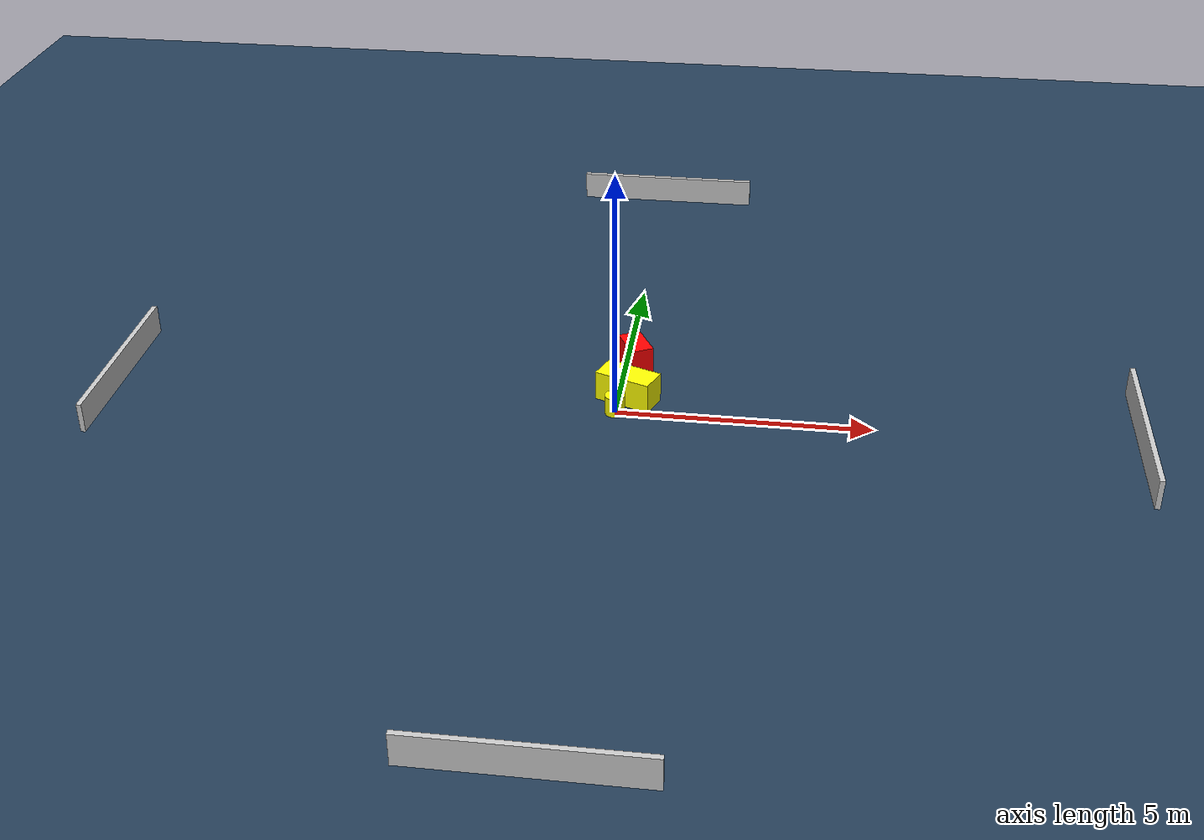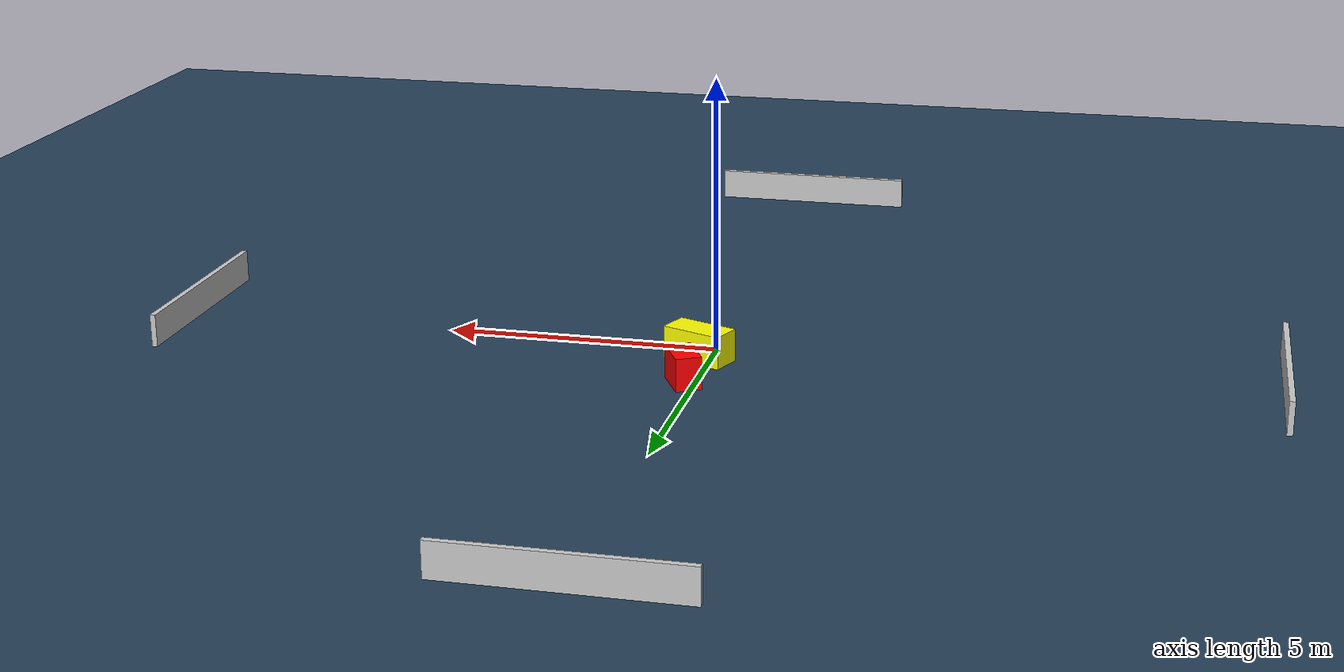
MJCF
<?xml version="1.0" ?>
<mujoco model="generated_environment">
  <option timestep="0.01" integrator="RK4" cone="elliptic"/>
  <default>
    <geom density="1"/>
  </default>
  <asset>
    <texture builtin="gradient" height="3072" name="skybox" rgb1="0.3 0.5 0.7" rgb2="0 0 0" type="skybox" width="512"/>
    <texture builtin="checker" height="300" name="groundplane" rgb1="0.2 0.3 0.4" rgb2="0.1 0.2 0.3" type="2d" width="300"/>
    <material name="groundplane" reflectance="0.2" texrepeat="5 5" texture="groundplane"/>
  </asset>
  <worldbody>
    <light dir="0 0 -1" directional="true" pos="0 0 1.5"/>
    <geom condim="3" friction="0.5 0.005 0.001" material="groundplane" name="floor" pos="0 0 0" size="0 0 0.05" type="plane"/>
    <body name="walls">
      <geom name="wall_1" condim="4" pos="-10.0 0.0 0.3" rgba="0.800000011920929 0.800000011920929 0.800000011920929 1.0" size="0.05 2.0 0.3" type="box"/>
      <geom name="wall_2" condim="4" pos="10.0 0.0 0.3" rgba="0.800000011920929 0.800000011920929 0.800000011920929 1.0" size="0.05 2.0 0.3" type="box"/>
      <geom name="wall_3" condim="4" pos="0.0 -10.0 0.3" rgba="0.800000011920929 0.800000011920929 0.800000011920929 1.0" size="2.0 0.05 0.3" type="box"/>
      <geom name="wall_4" condim="4" pos="0.0 10.0 0.3" rgba="0.800000011920929 0.800000011920929 0.800000011920929 1.0" size="2.0 0.05 0.3" type="box"/>
    </body>
    <body name="robot">
      <joint name="joint_x" type="slide" pos="0 0 0" axis="1 0 0"/>
      <joint name="joint_y" type="slide" pos="0 0 0" axis="0 1 0"/>
      <geom name="robot" type="cylinder" pos="0.0 0.0 0.2" size="0.2 0.2 0.0" mass="5.0" friction="1.0 0.005 0.0001" condim="4" rgba="1.0 1.0 0.0 1.0"/>
    </body>
    <body name="obstacle_1_movable">
      <geom name="obstacle_1_movable" condim="4" pos="0.190608013318202 0.5309844207004016 0.3" euler="0 0 248.6759920922279" friction="0.0 0.005 0.001" rgba="1.0 1.0 0.0 1.0" size="0.2816245994391997 0.5734513797212755 0.3" type="box" mass="0.1"/>
      <joint type="free"/>
    </body>
    <body name="obstacle_2_static">
      <geom name="obstacle_2_static" condim="4" pos="0.19089913508610065 1.7878509601886912 0.3" euler="0 0 207.78110725176745" friction="0.0 0.005 0.001" rgba="1.0 0.0 0.0 1.0" size="0.23240970974541147 0.378167300041939 0.3" type="box"/>
    </body>
  </worldbody>
  <actuator>
    <motor name="actuator_x" joint="joint_x" gear="1" ctrlrange="-1 1"/>
    <motor name="actuator_y" joint="joint_y" gear="1" ctrlrange="-1 1"/>
  </actuator>
</mujoco>
